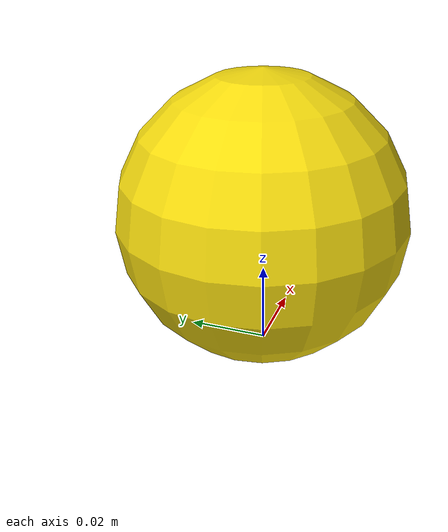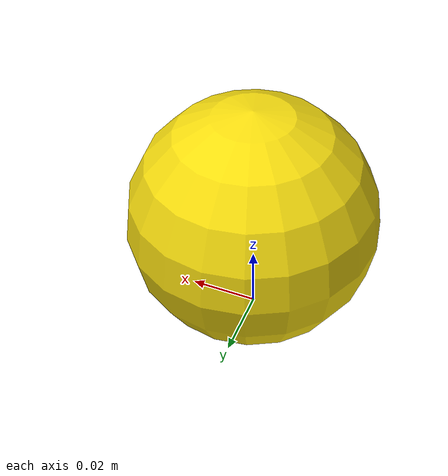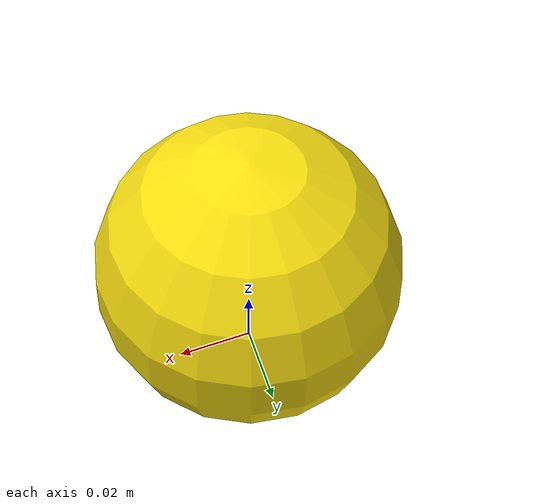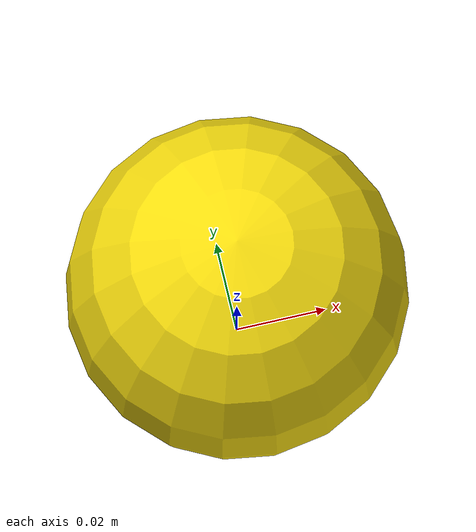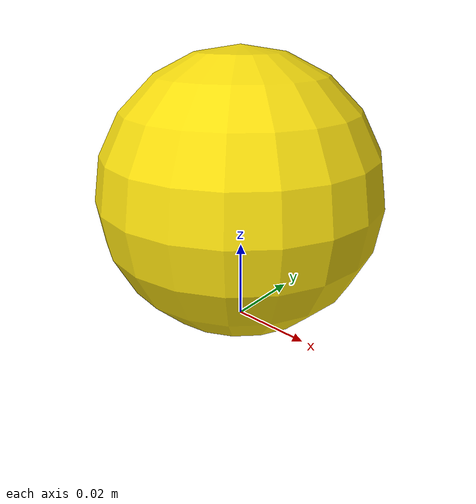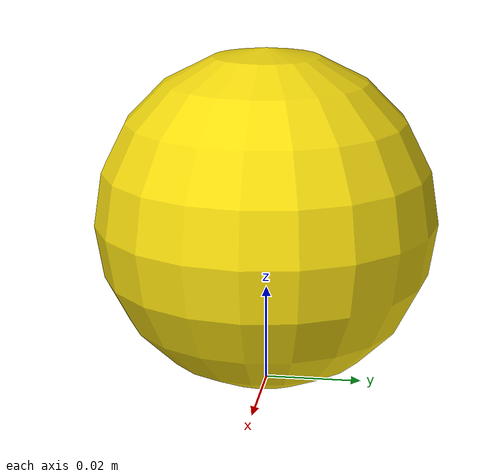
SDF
<?xml version="1.0"?>
<sdf version="1.9">
  <model name="yellow_ball">
    <static>true</static>
    <link name="link">
      <collision name="collision">
        <pose>0 0 0.035 0 0 0</pose>
        <geometry><sphere><radius>0.035</radius></sphere></geometry>
      </collision>
      <visual name="visual">
        <pose>0 0 0.035 0 0 0</pose>
        <geometry><sphere><radius>0.035</radius></sphere></geometry>
        <material>
          <ambient>0.95 0.85 0.05 1</ambient>
          <diffuse>0.95 0.85 0.05 1</diffuse>
          <specular>0.3 0.3 0.3 1</specular>
        </material>
      </visual>
    </link>
  </model>
</sdf>
